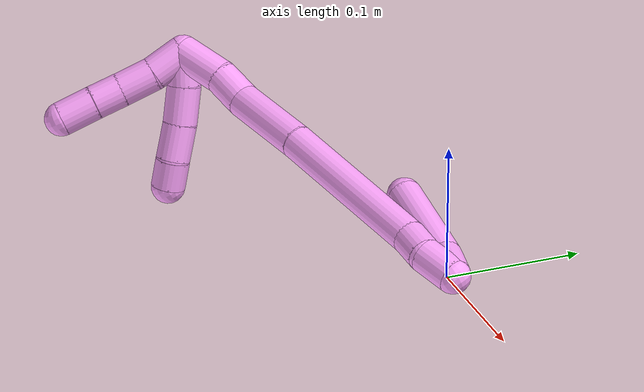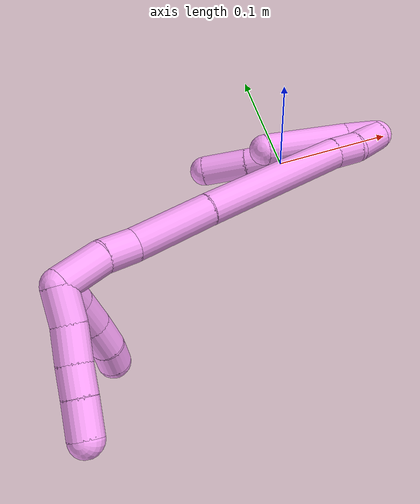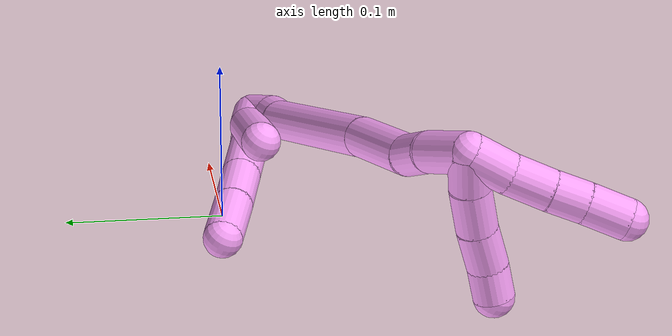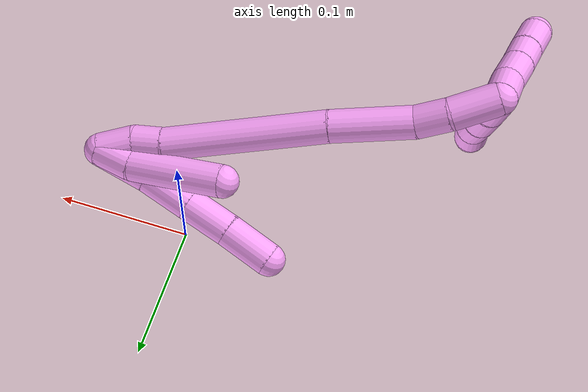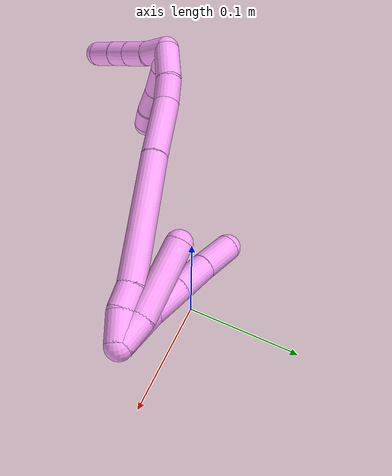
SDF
<sdf version="1.7">
 <world name="default">
  <model name="photoneo_s_sensor">
   <static>1</static>
   <pose>0 0 2 1.57079 1.57079 3.14159</pose>
   <link name="link">
    <inertial><mass>0.1</mass></inertial>
    <sensor name="sensor" type="depth">
     <update_rate>30</update_rate>
     <camera>
      <horizontal_fov>1.22</horizontal_fov>
      <image><width>1920</width><height>1200</height><format>B8G8R8</format></image>
      <clip><near>0.1</near><far>4</far></clip>
      <depth_camera><output>points</output></depth_camera>
     </camera>
     <plugin name="camera_plugin" filename="libgazebo_ros_depth_camera.so">
      <baseline>0.2</baseline>
      <alwaysOn>1</alwaysOn>
      <updateRate>0.0</updateRate>
      <cameraName>camera_ir</cameraName>
      <imageTopicName>/camera/color/image_raw</imageTopicName>
      <cameraInfoTopicName>/camera/color/camera_info</cameraInfoTopicName>
      <depthImageTopicName>/camera/depth/image_raw</depthImageTopicName>
      <depthImageCameraInfoTopicName>/camera/depth/camera_info</depthImageCameraInfoTopicName>
      <pointCloudTopicName>/camera/depth/points</pointCloudTopicName>
      <frameName>fr_optical</frameName>
      <pointCloudCutoff>0.1</pointCloudCutoff>
      <pointCloudCutoffMax>2.0</pointCloudCutoffMax>
      <distortionK1>0</distortionK1>
      <distortionK2>0</distortionK2>
      <distortionK3>0</distortionK3>
      <distortionT1>0</distortionT1>
      <distortionT2>0</distortionT2>
      <CxPrime>0</CxPrime>
      <Cx>0</Cx>
      <Cy>0</Cy>
      <focalLength>0</focalLength>
      <hackBaseline>0</hackBaseline>
     </plugin>
    </sensor>
   </link>
  </model>
  <model name="bin">
   <static>1</static>
   <link name="bottom">
    <collision name="collision-bottom">
     <pose>0 0 -0.01 0 -0 0</pose>
     <geometry><box><size>0.8 0.6 0.02</size></box></geometry>
     <surface>
      <friction><ode><mu>100</mu><mu2>100</mu2></ode></friction>
      <contact><collide_bitmask>65535</collide_bitmask></contact>
     </surface>
    </collision>
   </link>
   <link name="west_wall">
    <collision name="collision-west_wall">
     <pose>-0.41 0 0.1 0 -0 0</pose>
     <geometry><box><size>0.02 0.6 0.2</size></box></geometry>
     <surface>
      <friction><ode><mu>100</mu><mu2>100</mu2></ode></friction>
      <contact><collide_bitmask>65535</collide_bitmask></contact>
     </surface>
    </collision>
   </link>
   <link name="east_wall">
    <collision name="collision-east_wall">
     <pose>0.41 0 0.1 0 -0 0</pose>
     <geometry><box><size>0.02 0.6 0.2</size></box></geometry>
     <surface>
      <friction><ode><mu>100</mu><mu2>100</mu2></ode></friction>
      <contact><collide_bitmask>65535</collide_bitmask></contact>
     </surface>
    </collision>
   </link>
   <link name="south_wall">
    <collision name="collision-south_wall">
     <pose>0 -0.31 0.1 0 -0 0</pose>
     <geometry><box><size>0.8 0.02 0.2</size></box></geometry>
     <surface>
      <friction><ode><mu>100</mu><mu2>100</mu2></ode></friction>
      <contact><collide_bitmask>65535</collide_bitmask></contact>
     </surface>
    </collision>
   </link>
   <link name="north_wall">
    <collision name="collision-north_wall">
     <pose>0 0.31 0.1 0 -0 0</pose>
     <geometry><box><size>0.8 0.02 0.2</size></box></geometry>
     <surface>
      <friction><ode><mu>100</mu><mu2>100</mu2></ode></friction>
      <contact><collide_bitmask>65535</collide_bitmask></contact>
     </surface>
    </collision>
   </link>
  </model>
  <model name="4">
   <static>0</static>
   <link name="4">
    <collision name="collision-cylinder-e_1_2_8">
     <pose>-0.014074 -0.014621 0.001544 1.4656 -0.763585 -0.693468</pose>
     <geometry><cylinder><radius>0.0125</radius><length>0.040705</length></cylinder></geometry>
     <surface>
      <friction><ode><mu>1.16</mu><mu2>1.16</mu2><slip1>0</slip1><slip2>0</slip2></ode></friction>
      <contact><ode><kp>1e+06</kp><kd>1</kd><max_vel>0</max_vel><min_depth>0.001</min_depth></ode></contact>
     </surface>
    </collision>
    <visual name="visual-cylinder-e_1_2_8">
     <pose>-0.014074 -0.014621 0.001544 1.4656 -0.763585 -0.693468</pose>
     <geometry><cylinder><radius>0.0125</radius><length>0.040705</length></cylinder></geometry>
     <material><ambient>1 0.65098 0.996078 1</ambient></material>
    </visual>
    <collision name="collision-cylinder-e_2_8_9">
     <pose>-0.041915 -0.041475 0.00364 1.52569 -0.843766 -0.810562</pose>
     <geometry><cylinder><radius>0.0125</radius><length>0.03685</length></cylinder></geometry>
     <surface>
      <friction><ode><mu>1.16</mu><mu2>1.16</mu2><slip1>0</slip1><slip2>0</slip2></ode></friction>
      <contact><ode><kp>1e+06</kp><kd>1</kd><max_vel>0</max_vel><min_depth>0.001</min_depth></ode></contact>
     </surface>
    </collision>
    <visual name="visual-cylinder-e_2_8_9">
     <pose>-0.041915 -0.041475 0.00364 1.52569 -0.843766 -0.810562</pose>
     <geometry><cylinder><radius>0.0125</radius><length>0.03685</length></cylinder></geometry>
     <material><ambient>1 0.65098 0.996078 1</ambient></material>
    </visual>
    <collision name="collision-cylinder-e_3_9_10">
     <pose>-0.068781 -0.065392 0.00487 1.51284 -0.84165 -0.79924</pose>
     <geometry><cylinder><radius>0.0125</radius><length>0.035132</length></cylinder></geometry>
     <surface>
      <friction><ode><mu>1.16</mu><mu2>1.16</mu2><slip1>0</slip1><slip2>0</slip2></ode></friction>
      <contact><ode><kp>1e+06</kp><kd>1</kd><max_vel>0</max_vel><min_depth>0.001</min_depth></ode></contact>
     </surface>
    </collision>
    <visual name="visual-cylinder-e_3_9_10">
     <pose>-0.068781 -0.065392 0.00487 1.51284 -0.84165 -0.79924</pose>
     <geometry><cylinder><radius>0.0125</radius><length>0.035132</length></cylinder></geometry>
     <material><ambient>1 0.65098 0.996078 1</ambient></material>
    </visual>
    <collision name="collision-cylinder-e_4_10_6">
     <pose>-0.095997 -0.089274 0.005571 1.56886 -0.858176 -0.856716</pose>
     <geometry><cylinder><radius>0.0125</radius><length>0.037313</length></cylinder></geometry>
     <surface>
      <friction><ode><mu>1.16</mu><mu2>1.16</mu2><slip1>0</slip1><slip2>0</slip2></ode></friction>
      <contact><ode><kp>1e+06</kp><kd>1</kd><max_vel>0</max_vel><min_depth>0.001</min_depth></ode></contact>
     </surface>
    </collision>
    <visual name="visual-cylinder-e_4_10_6">
     <pose>-0.095997 -0.089274 0.005571 1.56886 -0.858176 -0.856716</pose>
     <geometry><cylinder><radius>0.0125</radius><length>0.037313</length></cylinder></geometry>
     <material><ambient>1 0.65098 0.996078 1</ambient></material>
    </visual>
    <collision name="collision-cylinder-e_1_2_11">
     <pose>-0.010397 -0.008353 0.003634 1.16044 -0.851306 -0.57773</pose>
     <geometry><cylinder><radius>0.0125</radius><length>0.027646</length></cylinder></geometry>
     <surface>
      <friction><ode><mu>1.16</mu><mu2>1.16</mu2><slip1>0</slip1><slip2>0</slip2></ode></friction>
      <contact><ode><kp>1e+06</kp><kd>1</kd><max_vel>0</max_vel><min_depth>0.001</min_depth></ode></contact>
     </surface>
    </collision>
    <visual name="visual-cylinder-e_1_2_11">
     <pose>-0.010397 -0.008353 0.003634 1.16044 -0.851306 -0.57773</pose>
     <geometry><cylinder><radius>0.0125</radius><length>0.027646</length></cylinder></geometry>
     <material><ambient>1 0.65098 0.996078 1</ambient></material>
    </visual>
    <collision name="collision-cylinder-e_2_11_5">
     <pose>-0.043376 -0.038889 0.024781 0.902498 -0.674142 -0.336439</pose>
     <geometry><cylinder><radius>0.0125</radius><length>0.072354</length></cylinder></geometry>
     <surface>
      <friction><ode><mu>1.16</mu><mu2>1.16</mu2><slip1>0</slip1><slip2>0</slip2></ode></friction>
      <contact><ode><kp>1e+06</kp><kd>1</kd><max_vel>0</max_vel><min_depth>0.001</min_depth></ode></contact>
     </surface>
    </collision>
    <visual name="visual-cylinder-e_2_11_5">
     <pose>-0.043376 -0.038889 0.024781 0.902498 -0.674142 -0.336439</pose>
     <geometry><cylinder><radius>0.0125</radius><length>0.072354</length></cylinder></geometry>
     <material><ambient>1 0.65098 0.996078 1</ambient></material>
    </visual>
    <collision name="collision-cylinder-e_1_2_12">
     <pose>-0.003509 -0.009623 0.008861 0.8266 -0.262073 -0.115469</pose>
     <geometry><cylinder><radius>0.0125</radius><length>0.027088</length></cylinder></geometry>
     <surface>
      <friction><ode><mu>1.16</mu><mu2>1.16</mu2><slip1>0</slip1><slip2>0</slip2></ode></friction>
      <contact><ode><kp>1e+06</kp><kd>1</kd><max_vel>0</max_vel><min_depth>0.001</min_depth></ode></contact>
     </surface>
    </collision>
    <visual name="visual-cylinder-e_1_2_12">
     <pose>-0.003509 -0.009623 0.008861 0.8266 -0.262073 -0.115469</pose>
     <geometry><cylinder><radius>0.0125</radius><length>0.027088</length></cylinder></geometry>
     <material><ambient>1 0.65098 0.996078 1</ambient></material>
    </visual>
    <collision name="collision-cylinder-e_2_12_13">
     <pose>-0.012977 -0.026816 0.023344 0.931983 -0.563606 -0.289174</pose>
     <geometry><cylinder><radius>0.0125</radius><length>0.022308</length></cylinder></geometry>
     <surface>
      <friction><ode><mu>1.16</mu><mu2>1.16</mu2><slip1>0</slip1><slip2>0</slip2></ode></friction>
      <contact><ode><kp>1e+06</kp><kd>1</kd><max_vel>0</max_vel><min_depth>0.001</min_depth></ode></contact>
     </surface>
    </collision>
    <visual name="visual-cylinder-e_2_12_13">
     <pose>-0.012977 -0.026816 0.023344 0.931983 -0.563606 -0.289174</pose>
     <geometry><cylinder><radius>0.0125</radius><length>0.022308</length></cylinder></geometry>
     <material><ambient>1 0.65098 0.996078 1</ambient></material>
    </visual>
    <collision name="collision-cylinder-e_3_13_14">
     <pose>-0.041751 -0.078683 0.066302 0.870479 -0.375164 -0.176062</pose>
     <geometry><cylinder><radius>0.0125</radius><length>0.124528</length></cylinder></geometry>
     <surface>
      <friction><ode><mu>1.16</mu><mu2>1.16</mu2><slip1>0</slip1><slip2>0</slip2></ode></friction>
      <contact><ode><kp>1e+06</kp><kd>1</kd><max_vel>0</max_vel><min_depth>0.001</min_depth></ode></contact>
     </surface>
    </collision>
    <visual name="visual-cylinder-e_3_13_14">
     <pose>-0.041751 -0.078683 0.066302 0.870479 -0.375164 -0.176062</pose>
     <geometry><cylinder><radius>0.0125</radius><length>0.124528</length></cylinder></geometry>
     <material><ambient>1 0.65098 0.996078 1</ambient></material>
    </visual>
    <collision name="collision-cylinder-e_4_14_15">
     <pose>-0.07665 -0.14665 0.120512 0.951447 -0.393993 -0.204927</pose>
     <geometry><cylinder><radius>0.0125</radius><length>0.062959</length></cylinder></geometry>
     <surface>
      <friction><ode><mu>1.16</mu><mu2>1.16</mu2><slip1>0</slip1><slip2>0</slip2></ode></friction>
      <contact><ode><kp>1e+06</kp><kd>1</kd><max_vel>0</max_vel><min_depth>0.001</min_depth></ode></contact>
     </surface>
    </collision>
    <visual name="visual-cylinder-e_4_14_15">
     <pose>-0.07665 -0.14665 0.120512 0.951447 -0.393993 -0.204927</pose>
     <geometry><cylinder><radius>0.0125</radius><length>0.062959</length></cylinder></geometry>
     <material><ambient>1 0.65098 0.996078 1</ambient></material>
    </visual>
    <collision name="collision-cylinder-e_5_15_16">
     <pose>-0.093145 -0.178181 0.146922 0.689458 -0.342777 -0.12414</pose>
     <geometry><cylinder><radius>0.0125</radius><length>0.026247</length></cylinder></geometry>
     <surface>
      <friction><ode><mu>1.16</mu><mu2>1.16</mu2><slip1>0</slip1><slip2>0</slip2></ode></friction>
      <contact><ode><kp>1e+06</kp><kd>1</kd><max_vel>0</max_vel><min_depth>0.001</min_depth></ode></contact>
     </surface>
    </collision>
    <visual name="visual-cylinder-e_5_15_16">
     <pose>-0.093145 -0.178181 0.146922 0.689458 -0.342777 -0.12414</pose>
     <geometry><cylinder><radius>0.0125</radius><length>0.026247</length></cylinder></geometry>
     <material><ambient>1 0.65098 0.996078 1</ambient></material>
    </visual>
    <collision name="collision-cylinder-e_6_16_1">
     <pose>-0.100727 -0.199215 0.168961 0.811477 -0.17284 -0.074399</pose>
     <geometry><cylinder><radius>0.0125</radius><length>0.03687</length></cylinder></geometry>
     <surface>
      <friction><ode><mu>1.16</mu><mu2>1.16</mu2><slip1>0</slip1><slip2>0</slip2></ode></friction>
      <contact><ode><kp>1e+06</kp><kd>1</kd><max_vel>0</max_vel><min_depth>0.001</min_depth></ode></contact>
     </surface>
    </collision>
    <visual name="visual-cylinder-e_6_16_1">
     <pose>-0.100727 -0.199215 0.168961 0.811477 -0.17284 -0.074399</pose>
     <geometry><cylinder><radius>0.0125</radius><length>0.03687</length></cylinder></geometry>
     <material><ambient>1 0.65098 0.996078 1</ambient></material>
    </visual>
    <collision name="collision-cylinder-e_1_1_17">
     <pose>-0.100032 -0.216465 0.170861 2.77445 0.327956 1.45588</pose>
     <geometry><cylinder><radius>0.0125</radius><length>0.023999</length></cylinder></geometry>
     <surface>
      <friction><ode><mu>1.16</mu><mu2>1.16</mu2><slip1>0</slip1><slip2>0</slip2></ode></friction>
      <contact><ode><kp>1e+06</kp><kd>1</kd><max_vel>0</max_vel><min_depth>0.001</min_depth></ode></contact>
     </surface>
    </collision>
    <visual name="visual-cylinder-e_1_1_17">
     <pose>-0.100032 -0.216465 0.170861 2.77445 0.327956 1.45588</pose>
     <geometry><cylinder><radius>0.0125</radius><length>0.023999</length></cylinder></geometry>
     <material><ambient>1 0.65098 0.996078 1</ambient></material>
    </visual>
    <collision name="collision-cylinder-e_2_17_18">
     <pose>-0.090558 -0.226482 0.148785 2.66389 0.409631 1.41257</pose>
     <geometry><cylinder><radius>0.0125</radius><length>0.028167</length></cylinder></geometry>
     <surface>
      <friction><ode><mu>1.16</mu><mu2>1.16</mu2><slip1>0</slip1><slip2>0</slip2></ode></friction>
      <contact><ode><kp>1e+06</kp><kd>1</kd><max_vel>0</max_vel><min_depth>0.001</min_depth></ode></contact>
     </surface>
    </collision>
    <visual name="visual-cylinder-e_2_17_18">
     <pose>-0.090558 -0.226482 0.148785 2.66389 0.409631 1.41257</pose>
     <geometry><cylinder><radius>0.0125</radius><length>0.028167</length></cylinder></geometry>
     <material><ambient>1 0.65098 0.996078 1</ambient></material>
    </visual>
    <collision name="collision-cylinder-e_3_18_19">
     <pose>-0.078849 -0.238684 0.127056 2.59336 0.469693 1.41001</pose>
     <geometry><cylinder><radius>0.0125</radius><length>0.026955</length></cylinder></geometry>
     <surface>
      <friction><ode><mu>1.16</mu><mu2>1.16</mu2><slip1>0</slip1><slip2>0</slip2></ode></friction>
      <contact><ode><kp>1e+06</kp><kd>1</kd><max_vel>0</max_vel><min_depth>0.001</min_depth></ode></contact>
     </surface>
    </collision>
    <visual name="visual-cylinder-e_3_18_19">
     <pose>-0.078849 -0.238684 0.127056 2.59336 0.469693 1.41001</pose>
     <geometry><cylinder><radius>0.0125</radius><length>0.026955</length></cylinder></geometry>
     <material><ambient>1 0.65098 0.996078 1</ambient></material>
    </visual>
    <collision name="collision-cylinder-e_4_19_4">
     <pose>-0.069519 -0.25067 0.108687 2.52731 0.314499 0.927136</pose>
     <geometry><cylinder><radius>0.0125</radius><length>0.020878</length></cylinder></geometry>
     <surface>
      <friction><ode><mu>1.16</mu><mu2>1.16</mu2><slip1>0</slip1><slip2>0</slip2></ode></friction>
      <contact><ode><kp>1e+06</kp><kd>1</kd><max_vel>0</max_vel><min_depth>0.001</min_depth></ode></contact>
     </surface>
    </collision>
    <visual name="visual-cylinder-e_4_19_4">
     <pose>-0.069519 -0.25067 0.108687 2.52731 0.314499 0.927136</pose>
     <geometry><cylinder><radius>0.0125</radius><length>0.020878</length></cylinder></geometry>
     <material><ambient>1 0.65098 0.996078 1</ambient></material>
    </visual>
    <collision name="collision-cylinder-e_1_1_20">
     <pose>-0.094321 -0.221444 0.180236 1.70551 0.808697 0.910974</pose>
     <geometry><cylinder><radius>0.0125</radius><length>0.026475</length></cylinder></geometry>
     <surface>
      <friction><ode><mu>1.16</mu><mu2>1.16</mu2><slip1>0</slip1><slip2>0</slip2></ode></friction>
      <contact><ode><kp>1e+06</kp><kd>1</kd><max_vel>0</max_vel><min_depth>0.001</min_depth></ode></contact>
     </surface>
    </collision>
    <visual name="visual-cylinder-e_1_1_20">
     <pose>-0.094321 -0.221444 0.180236 1.70551 0.808697 0.910974</pose>
     <geometry><cylinder><radius>0.0125</radius><length>0.026475</length></cylinder></geometry>
     <material><ambient>1 0.65098 0.996078 1</ambient></material>
    </visual>
    <collision name="collision-cylinder-e_2_20_21">
     <pose>-0.07601 -0.239998 0.179775 1.49023 0.742052 0.68916</pose>
     <geometry><cylinder><radius>0.0125</radius><length>0.025854</length></cylinder></geometry>
     <surface>
      <friction><ode><mu>1.16</mu><mu2>1.16</mu2><slip1>0</slip1><slip2>0</slip2></ode></friction>
      <contact><ode><kp>1e+06</kp><kd>1</kd><max_vel>0</max_vel><min_depth>0.001</min_depth></ode></contact>
     </surface>
    </collision>
    <visual name="visual-cylinder-e_2_20_21">
     <pose>-0.07601 -0.239998 0.179775 1.49023 0.742052 0.68916</pose>
     <geometry><cylinder><radius>0.0125</radius><length>0.025854</length></cylinder></geometry>
     <material><ambient>1 0.65098 0.996078 1</ambient></material>
    </visual>
    <collision name="collision-cylinder-e_3_21_22">
     <pose>-0.059709 -0.256995 0.18143 1.45299 0.786227 0.706141</pose>
     <geometry><cylinder><radius>0.0125</radius><length>0.021377</length></cylinder></geometry>
     <surface>
      <friction><ode><mu>1.16</mu><mu2>1.16</mu2><slip1>0</slip1><slip2>0</slip2></ode></friction>
      <contact><ode><kp>1e+06</kp><kd>1</kd><max_vel>0</max_vel><min_depth>0.001</min_depth></ode></contact>
     </surface>
    </collision>
    <visual name="visual-cylinder-e_3_21_22">
     <pose>-0.059709 -0.256995 0.18143 1.45299 0.786227 0.706141</pose>
     <geometry><cylinder><radius>0.0125</radius><length>0.021377</length></cylinder></geometry>
     <material><ambient>1 0.65098 0.996078 1</ambient></material>
    </visual>
    <collision name="collision-cylinder-e_4_22_3">
     <pose>-0.043109 -0.27401 0.183108 1.48792 0.757834 0.70252</pose>
     <geometry><cylinder><radius>0.0125</radius><length>0.026295</length></cylinder></geometry>
     <surface>
      <friction><ode><mu>1.16</mu><mu2>1.16</mu2><slip1>0</slip1><slip2>0</slip2></ode></friction>
      <contact><ode><kp>1e+06</kp><kd>1</kd><max_vel>0</max_vel><min_depth>0.001</min_depth></ode></contact>
     </surface>
    </collision>
    <visual name="visual-cylinder-e_4_22_3">
     <pose>-0.043109 -0.27401 0.183108 1.48792 0.757834 0.70252</pose>
     <geometry><cylinder><radius>0.0125</radius><length>0.026295</length></cylinder></geometry>
     <material><ambient>1 0.65098 0.996078 1</ambient></material>
    </visual>
    <collision name="collision-sphere-3">
     <pose>-0.034072 -0.283527 0.183898 0 -0 0</pose>
     <geometry><sphere><radius>0.0125</radius></sphere></geometry>
     <surface>
      <friction><ode><mu>1.16</mu><mu2>1.16</mu2><slip1>0</slip1><slip2>0</slip2></ode></friction>
      <contact><ode><kp>1e+06</kp><kd>1</kd><max_vel>0</max_vel><min_depth>0.001</min_depth></ode></contact>
     </surface>
    </collision>
    <visual name="visual-sphere-3">
     <pose>-0.034072 -0.283527 0.183898 0 -0 0</pose>
     <geometry><sphere><radius>0.0125</radius></sphere></geometry>
     <material><ambient>1 0.65098 0.996078 1</ambient></material>
    </visual>
    <collision name="collision-sphere-22">
     <pose>-0.052145 -0.264494 0.182317 0 -0 0</pose>
     <geometry><sphere><radius>0.0125</radius></sphere></geometry>
     <surface>
      <friction><ode><mu>1.16</mu><mu2>1.16</mu2><slip1>0</slip1><slip2>0</slip2></ode></friction>
      <contact><ode><kp>1e+06</kp><kd>1</kd><max_vel>0</max_vel><min_depth>0.001</min_depth></ode></contact>
     </surface>
    </collision>
    <visual name="visual-sphere-22">
     <pose>-0.052145 -0.264494 0.182317 0 -0 0</pose>
     <geometry><sphere><radius>0.0125</radius></sphere></geometry>
     <material><ambient>1 0.65098 0.996078 1</ambient></material>
    </visual>
    <collision name="collision-sphere-21">
     <pose>-0.067273 -0.249496 0.180542 0 -0 0</pose>
     <geometry><sphere><radius>0.0125</radius></sphere></geometry>
     <surface>
      <friction><ode><mu>1.16</mu><mu2>1.16</mu2><slip1>0</slip1><slip2>0</slip2></ode></friction>
      <contact><ode><kp>1e+06</kp><kd>1</kd><max_vel>0</max_vel><min_depth>0.001</min_depth></ode></contact>
     </surface>
    </collision>
    <visual name="visual-sphere-21">
     <pose>-0.067273 -0.249496 0.180542 0 -0 0</pose>
     <geometry><sphere><radius>0.0125</radius></sphere></geometry>
     <material><ambient>1 0.65098 0.996078 1</ambient></material>
    </visual>
    <collision name="collision-sphere-20">
     <pose>-0.084746 -0.230501 0.179008 0 -0 0</pose>
     <geometry><sphere><radius>0.0125</radius></sphere></geometry>
     <surface>
      <friction><ode><mu>1.16</mu><mu2>1.16</mu2><slip1>0</slip1><slip2>0</slip2></ode></friction>
      <contact><ode><kp>1e+06</kp><kd>1</kd><max_vel>0</max_vel><min_depth>0.001</min_depth></ode></contact>
     </surface>
    </collision>
    <visual name="visual-sphere-20">
     <pose>-0.084746 -0.230501 0.179008 0 -0 0</pose>
     <geometry><sphere><radius>0.0125</radius></sphere></geometry>
     <material><ambient>1 0.65098 0.996078 1</ambient></material>
    </visual>
    <collision name="collision-sphere-4">
     <pose>-0.06629 -0.256392 0.100575 0 -0 0</pose>
     <geometry><sphere><radius>0.0125</radius></sphere></geometry>
     <surface>
      <friction><ode><mu>1.16</mu><mu2>1.16</mu2><slip1>0</slip1><slip2>0</slip2></ode></friction>
      <contact><ode><kp>1e+06</kp><kd>1</kd><max_vel>0</max_vel><min_depth>0.001</min_depth></ode></contact>
     </surface>
    </collision>
    <visual name="visual-sphere-4">
     <pose>-0.06629 -0.256392 0.100575 0 -0 0</pose>
     <geometry><sphere><radius>0.0125</radius></sphere></geometry>
     <material><ambient>1 0.65098 0.996078 1</ambient></material>
    </visual>
    <collision name="collision-sphere-11">
     <pose>-0.020794 -0.016706 0.007268 0 -0 0</pose>
     <geometry><sphere><radius>0.0125</radius></sphere></geometry>
     <surface>
      <friction><ode><mu>1.16</mu><mu2>1.16</mu2><slip1>0</slip1><slip2>0</slip2></ode></friction>
      <contact><ode><kp>1e+06</kp><kd>1</kd><max_vel>0</max_vel><min_depth>0.001</min_depth></ode></contact>
     </surface>
    </collision>
    <visual name="visual-sphere-11">
     <pose>-0.020794 -0.016706 0.007268 0 -0 0</pose>
     <geometry><sphere><radius>0.0125</radius></sphere></geometry>
     <material><ambient>1 0.65098 0.996078 1</ambient></material>
    </visual>
    <collision name="collision-sphere-6">
     <pose>-0.110113 -0.101471 0.005595 0 -0 0</pose>
     <geometry><sphere><radius>0.0125</radius></sphere></geometry>
     <surface>
      <friction><ode><mu>1.16</mu><mu2>1.16</mu2><slip1>0</slip1><slip2>0</slip2></ode></friction>
      <contact><ode><kp>1e+06</kp><kd>1</kd><max_vel>0</max_vel><min_depth>0.001</min_depth></ode></contact>
     </surface>
    </collision>
    <visual name="visual-sphere-6">
     <pose>-0.110113 -0.101471 0.005595 0 -0 0</pose>
     <geometry><sphere><radius>0.0125</radius></sphere></geometry>
     <material><ambient>1 0.65098 0.996078 1</ambient></material>
    </visual>
    <collision name="collision-sphere-10">
     <pose>-0.08188 -0.077076 0.005548 0 -0 0</pose>
     <geometry><sphere><radius>0.0125</radius></sphere></geometry>
     <surface>
      <friction><ode><mu>1.16</mu><mu2>1.16</mu2><slip1>0</slip1><slip2>0</slip2></ode></friction>
      <contact><ode><kp>1e+06</kp><kd>1</kd><max_vel>0</max_vel><min_depth>0.001</min_depth></ode></contact>
     </surface>
    </collision>
    <visual name="visual-sphere-10">
     <pose>-0.08188 -0.077076 0.005548 0 -0 0</pose>
     <geometry><sphere><radius>0.0125</radius></sphere></geometry>
     <material><ambient>1 0.65098 0.996078 1</ambient></material>
    </visual>
    <collision name="collision-sphere-9">
     <pose>-0.055681 -0.053709 0.004192 0 -0 0</pose>
     <geometry><sphere><radius>0.0125</radius></sphere></geometry>
     <surface>
      <friction><ode><mu>1.16</mu><mu2>1.16</mu2><slip1>0</slip1><slip2>0</slip2></ode></friction>
      <contact><ode><kp>1e+06</kp><kd>1</kd><max_vel>0</max_vel><min_depth>0.001</min_depth></ode></contact>
     </surface>
    </collision>
    <visual name="visual-sphere-9">
     <pose>-0.055681 -0.053709 0.004192 0 -0 0</pose>
     <geometry><sphere><radius>0.0125</radius></sphere></geometry>
     <material><ambient>1 0.65098 0.996078 1</ambient></material>
    </visual>
    <collision name="collision-sphere-2">
     <geometry><sphere><radius>0.0125</radius></sphere></geometry>
     <surface>
      <friction><ode><mu>1.16</mu><mu2>1.16</mu2><slip1>0</slip1><slip2>0</slip2></ode></friction>
      <contact><ode><kp>1e+06</kp><kd>1</kd><max_vel>0</max_vel><min_depth>0.001</min_depth></ode></contact>
     </surface>
    </collision>
    <visual name="visual-sphere-2">
     <geometry><sphere><radius>0.0125</radius></sphere></geometry>
     <material><ambient>1 0.65098 0.996078 1</ambient></material>
    </visual>
    <collision name="collision-sphere-19">
     <pose>-0.072748 -0.244948 0.116799 0 -0 0</pose>
     <geometry><sphere><radius>0.0125</radius></sphere></geometry>
     <surface>
      <friction><ode><mu>1.16</mu><mu2>1.16</mu2><slip1>0</slip1><slip2>0</slip2></ode></friction>
      <contact><ode><kp>1e+06</kp><kd>1</kd><max_vel>0</max_vel><min_depth>0.001</min_depth></ode></contact>
     </surface>
    </collision>
    <visual name="visual-sphere-19">
     <pose>-0.072748 -0.244948 0.116799 0 -0 0</pose>
     <geometry><sphere><radius>0.0125</radius></sphere></geometry>
     <material><ambient>1 0.65098 0.996078 1</ambient></material>
    </visual>
    <collision name="collision-sphere-8">
     <pose>-0.028148 -0.029241 0.003088 0 -0 0</pose>
     <geometry><sphere><radius>0.0125</radius></sphere></geometry>
     <surface>
      <friction><ode><mu>1.16</mu><mu2>1.16</mu2><slip1>0</slip1><slip2>0</slip2></ode></friction>
      <contact><ode><kp>1e+06</kp><kd>1</kd><max_vel>0</max_vel><min_depth>0.001</min_depth></ode></contact>
     </surface>
    </collision>
    <visual name="visual-sphere-8">
     <pose>-0.028148 -0.029241 0.003088 0 -0 0</pose>
     <geometry><sphere><radius>0.0125</radius></sphere></geometry>
     <material><ambient>1 0.65098 0.996078 1</ambient></material>
    </visual>
    <collision name="collision-sphere-5">
     <pose>-0.065959 -0.061072 0.042295 0 -0 0</pose>
     <geometry><sphere><radius>0.0125</radius></sphere></geometry>
     <surface>
      <friction><ode><mu>1.16</mu><mu2>1.16</mu2><slip1>0</slip1><slip2>0</slip2></ode></friction>
      <contact><ode><kp>1e+06</kp><kd>1</kd><max_vel>0</max_vel><min_depth>0.001</min_depth></ode></contact>
     </surface>
    </collision>
    <visual name="visual-sphere-5">
     <pose>-0.065959 -0.061072 0.042295 0 -0 0</pose>
     <geometry><sphere><radius>0.0125</radius></sphere></geometry>
     <material><ambient>1 0.65098 0.996078 1</ambient></material>
    </visual>
    <collision name="collision-sphere-12">
     <pose>-0.007018 -0.019246 0.017722 0 -0 0</pose>
     <geometry><sphere><radius>0.0125</radius></sphere></geometry>
     <surface>
      <friction><ode><mu>1.16</mu><mu2>1.16</mu2><slip1>0</slip1><slip2>0</slip2></ode></friction>
      <contact><ode><kp>1e+06</kp><kd>1</kd><max_vel>0</max_vel><min_depth>0.001</min_depth></ode></contact>
     </surface>
    </collision>
    <visual name="visual-sphere-12">
     <pose>-0.007018 -0.019246 0.017722 0 -0 0</pose>
     <geometry><sphere><radius>0.0125</radius></sphere></geometry>
     <material><ambient>1 0.65098 0.996078 1</ambient></material>
    </visual>
    <collision name="collision-sphere-13">
     <pose>-0.018936 -0.034385 0.028966 0 -0 0</pose>
     <geometry><sphere><radius>0.0125</radius></sphere></geometry>
     <surface>
      <friction><ode><mu>1.16</mu><mu2>1.16</mu2><slip1>0</slip1><slip2>0</slip2></ode></friction>
      <contact><ode><kp>1e+06</kp><kd>1</kd><max_vel>0</max_vel><min_depth>0.001</min_depth></ode></contact>
     </surface>
    </collision>
    <visual name="visual-sphere-13">
     <pose>-0.018936 -0.034385 0.028966 0 -0 0</pose>
     <geometry><sphere><radius>0.0125</radius></sphere></geometry>
     <material><ambient>1 0.65098 0.996078 1</ambient></material>
    </visual>
    <collision name="collision-sphere-14">
     <pose>-0.064566 -0.122982 0.103638 0 -0 0</pose>
     <geometry><sphere><radius>0.0125</radius></sphere></geometry>
     <surface>
      <friction><ode><mu>1.16</mu><mu2>1.16</mu2><slip1>0</slip1><slip2>0</slip2></ode></friction>
      <contact><ode><kp>1e+06</kp><kd>1</kd><max_vel>0</max_vel><min_depth>0.001</min_depth></ode></contact>
     </surface>
    </collision>
    <visual name="visual-sphere-14">
     <pose>-0.064566 -0.122982 0.103638 0 -0 0</pose>
     <geometry><sphere><radius>0.0125</radius></sphere></geometry>
     <material><ambient>1 0.65098 0.996078 1</ambient></material>
    </visual>
    <collision name="collision-sphere-15">
     <pose>-0.088735 -0.170319 0.137386 0 -0 0</pose>
     <geometry><sphere><radius>0.0125</radius></sphere></geometry>
     <surface>
      <friction><ode><mu>1.16</mu><mu2>1.16</mu2><slip1>0</slip1><slip2>0</slip2></ode></friction>
      <contact><ode><kp>1e+06</kp><kd>1</kd><max_vel>0</max_vel><min_depth>0.001</min_depth></ode></contact>
     </surface>
    </collision>
    <visual name="visual-sphere-15">
     <pose>-0.088735 -0.170319 0.137386 0 -0 0</pose>
     <geometry><sphere><radius>0.0125</radius></sphere></geometry>
     <material><ambient>1 0.65098 0.996078 1</ambient></material>
    </visual>
    <collision name="collision-sphere-16">
     <pose>-0.097556 -0.186044 0.156459 0 -0 0</pose>
     <geometry><sphere><radius>0.0125</radius></sphere></geometry>
     <surface>
      <friction><ode><mu>1.16</mu><mu2>1.16</mu2><slip1>0</slip1><slip2>0</slip2></ode></friction>
      <contact><ode><kp>1e+06</kp><kd>1</kd><max_vel>0</max_vel><min_depth>0.001</min_depth></ode></contact>
     </surface>
    </collision>
    <visual name="visual-sphere-16">
     <pose>-0.097556 -0.186044 0.156459 0 -0 0</pose>
     <geometry><sphere><radius>0.0125</radius></sphere></geometry>
     <material><ambient>1 0.65098 0.996078 1</ambient></material>
    </visual>
    <collision name="collision-sphere-1">
     <pose>-0.103897 -0.212387 0.181463 0 -0 0</pose>
     <geometry><sphere><radius>0.0125</radius></sphere></geometry>
     <surface>
      <friction><ode><mu>1.16</mu><mu2>1.16</mu2><slip1>0</slip1><slip2>0</slip2></ode></friction>
      <contact><ode><kp>1e+06</kp><kd>1</kd><max_vel>0</max_vel><min_depth>0.001</min_depth></ode></contact>
     </surface>
    </collision>
    <visual name="visual-sphere-1">
     <pose>-0.103897 -0.212387 0.181463 0 -0 0</pose>
     <geometry><sphere><radius>0.0125</radius></sphere></geometry>
     <material><ambient>1 0.65098 0.996078 1</ambient></material>
    </visual>
    <collision name="collision-sphere-18">
     <pose>-0.084949 -0.232421 0.137313 0 -0 0</pose>
     <geometry><sphere><radius>0.0125</radius></sphere></geometry>
     <surface>
      <friction><ode><mu>1.16</mu><mu2>1.16</mu2><slip1>0</slip1><slip2>0</slip2></ode></friction>
      <contact><ode><kp>1e+06</kp><kd>1</kd><max_vel>0</max_vel><min_depth>0.001</min_depth></ode></contact>
     </surface>
    </collision>
    <visual name="visual-sphere-18">
     <pose>-0.084949 -0.232421 0.137313 0 -0 0</pose>
     <geometry><sphere><radius>0.0125</radius></sphere></geometry>
     <material><ambient>1 0.65098 0.996078 1</ambient></material>
    </visual>
    <collision name="collision-sphere-17">
     <pose>-0.096167 -0.220542 0.160258 0 -0 0</pose>
     <geometry><sphere><radius>0.0125</radius></sphere></geometry>
     <surface>
      <friction><ode><mu>1.16</mu><mu2>1.16</mu2><slip1>0</slip1><slip2>0</slip2></ode></friction>
      <contact><ode><kp>1e+06</kp><kd>1</kd><max_vel>0</max_vel><min_depth>0.001</min_depth></ode></contact>
     </surface>
    </collision>
    <visual name="visual-sphere-17">
     <pose>-0.096167 -0.220542 0.160258 0 -0 0</pose>
     <geometry><sphere><radius>0.0125</radius></sphere></geometry>
     <material><ambient>1 0.65098 0.996078 1</ambient></material>
    </visual>
    <inertial>
     <pose>-0.058014 -0.120955 0.081677 0 -0 0</pose>
     <mass>0.75</mass>
     <inertia>
      <ixx>0.000175</ixx>
      <ixy>0</ixy>
      <ixz>0</ixz>
      <iyy>0.000103</iyy>
      <iyz>0</iyz>
      <izz>0.000309</izz>
     </inertia>
    </inertial>
   </link>
   <pose>0.074549 -0.027493 0.043345 0.517625 0.120467 -0.897521</pose>
  </model>
 </world>
</sdf>
